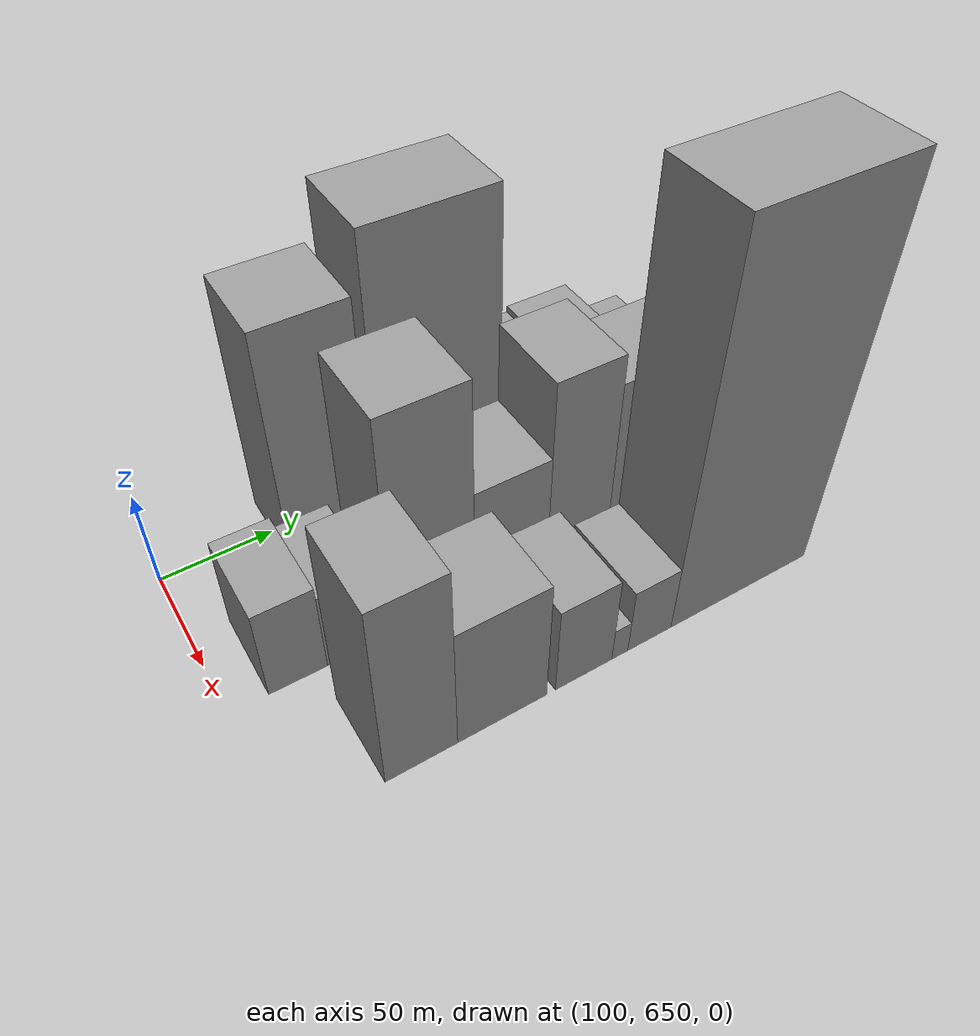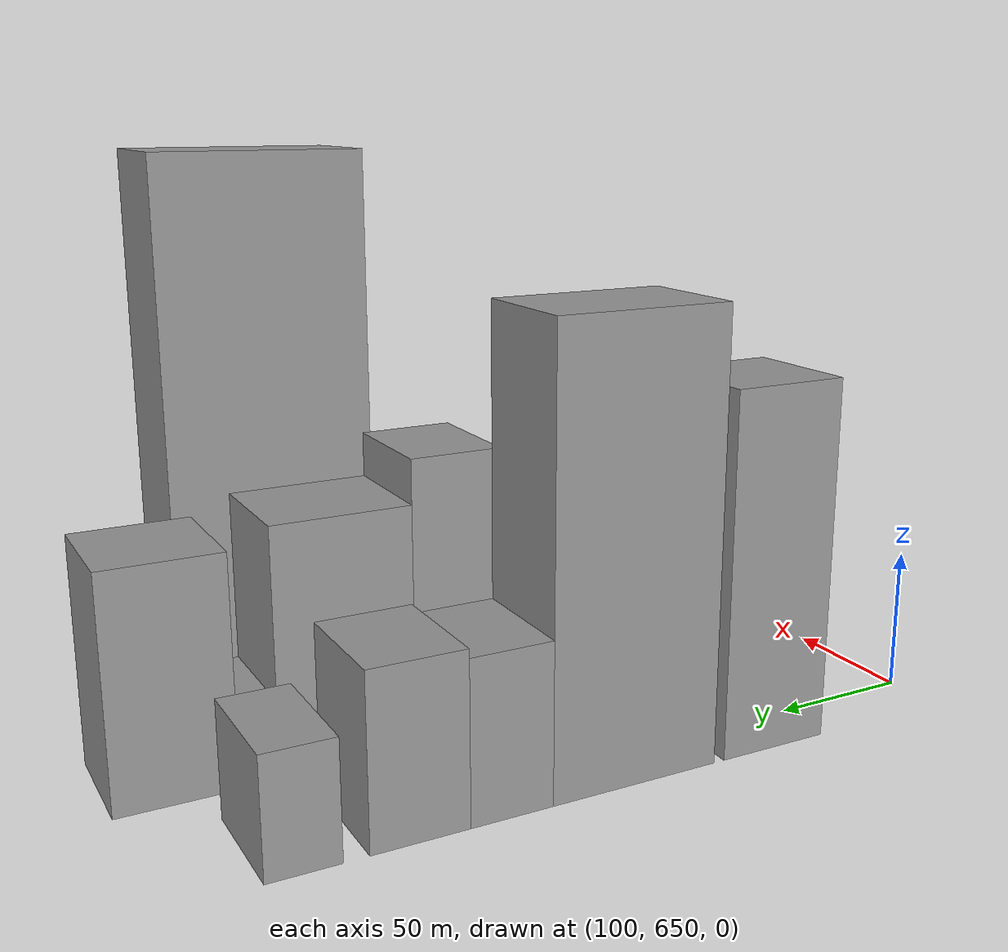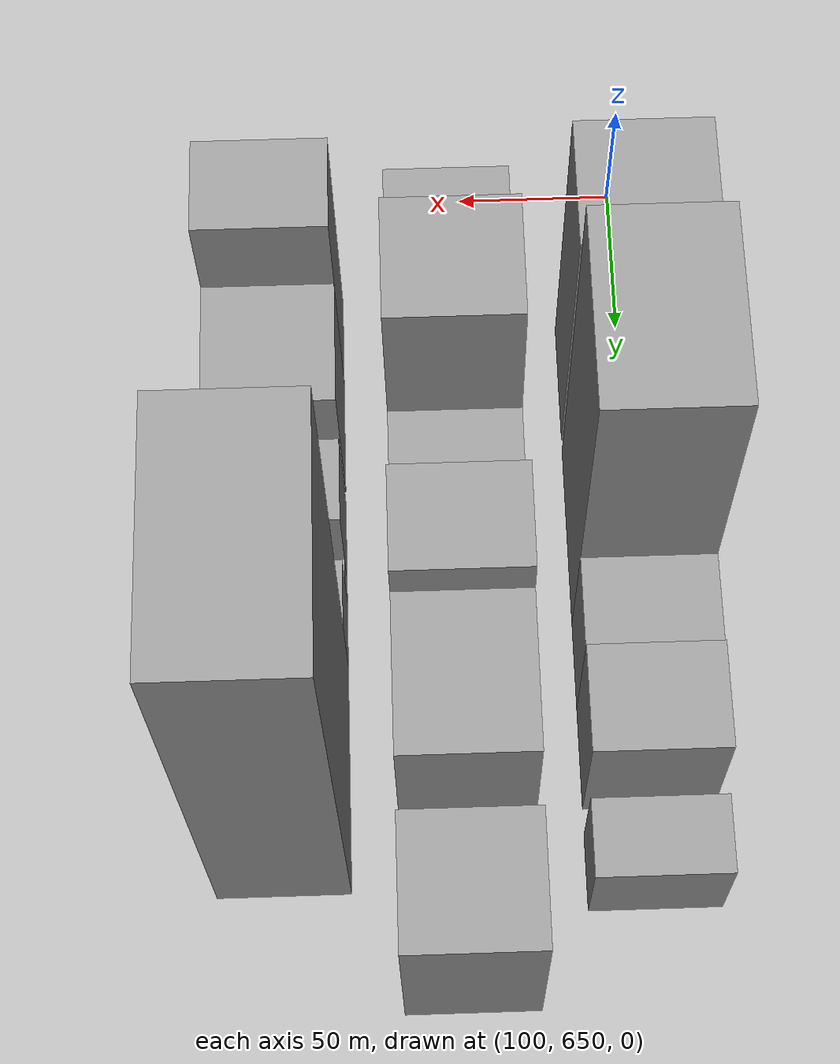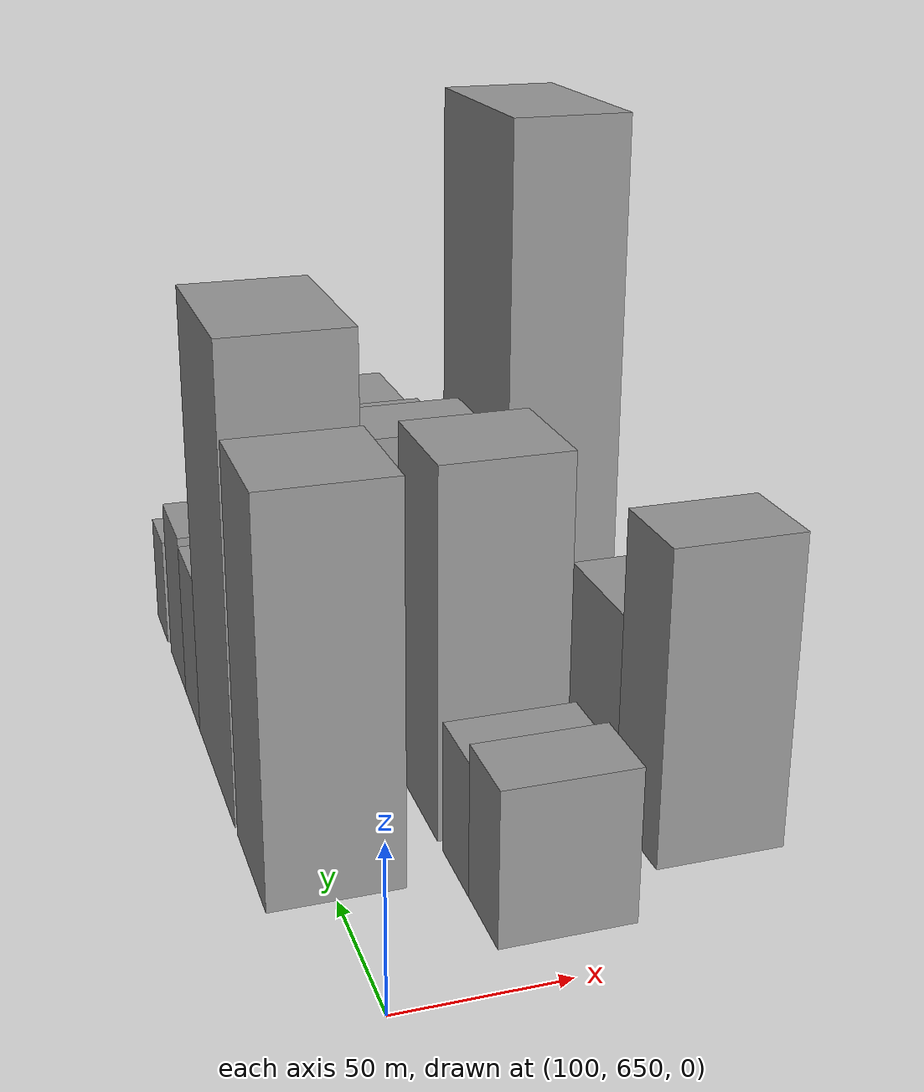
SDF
<sdf version="1.6">
 <world name="default">
  <model name="building_46">
   <static>1</static>
   <pose>100.0000 720.5906 0 0.000000 0.000000 0.000000</pose>
   <link name="link">
    <pose>0 0 61.50 0 0 0</pose>
    <collision name="collision"><geometry><box><size>40.0000 40.1771 123.0000</size></box></geometry></collision>
    <visual name="visual">
     <cast_shadows>0</cast_shadows>
     <geometry><box><size>40.0000 40.1771 123.0000</size></box></geometry>
     <material>
      <script>
       <uri>model://grey_wall/materials/scripts</uri>
       <uri>model://grey_wall/materials/textures</uri>
       <name>vrc/grey_wall</name>
      </script>
     </material>
    </visual>
   </link>
  </model>
  <model name="building_47">
   <static>1</static>
   <pose>100.0000 774.5838 0 0.000000 0.000000 0.000000</pose>
   <link name="link">
    <pose>0 0 75.00 0 0 0</pose>
    <collision name="collision"><geometry><box><size>40.0000 59.8094 150.0000</size></box></geometry></collision>
    <visual name="visual">
     <cast_shadows>0</cast_shadows>
     <geometry><box><size>40.0000 59.8094 150.0000</size></box></geometry>
     <material>
      <script>
       <uri>model://grey_wall/materials/scripts</uri>
       <uri>model://grey_wall/materials/textures</uri>
       <name>vrc/grey_wall</name>
      </script>
     </material>
    </visual>
   </link>
  </model>
  <model name="building_48">
   <static>1</static>
   <pose>100.0000 818.4534 0 0.000000 0.000000 0.000000</pose>
   <link name="link">
    <pose>0 0 27.00 0 0 0</pose>
    <collision name="collision"><geometry><box><size>40.0000 27.9298 54.0000</size></box></geometry></collision>
    <visual name="visual">
     <cast_shadows>0</cast_shadows>
     <geometry><box><size>40.0000 27.9298 54.0000</size></box></geometry>
     <material>
      <script>
       <uri>model://grey_wall/materials/scripts</uri>
       <uri>model://grey_wall/materials/textures</uri>
       <name>vrc/grey_wall</name>
      </script>
     </material>
    </visual>
   </link>
  </model>
  <model name="building_49">
   <static>1</static>
   <pose>100.0000 848.4009 0 0.000000 0.000000 0.000000</pose>
   <link name="link">
    <pose>0 0 28.50 0 0 0</pose>
    <collision name="collision"><geometry><box><size>40.0000 31.9652 57.0000</size></box></geometry></collision>
    <visual name="visual">
     <cast_shadows>0</cast_shadows>
     <geometry><box><size>40.0000 31.9652 57.0000</size></box></geometry>
     <material>
      <script>
       <uri>model://grey_wall/materials/scripts</uri>
       <uri>model://grey_wall/materials/textures</uri>
       <name>vrc/grey_wall</name>
      </script>
     </material>
    </visual>
   </link>
  </model>
  <model name="building_50">
   <static>1</static>
   <pose>100.0000 883.9743 0 0.000000 0.000000 0.000000</pose>
   <link name="link">
    <pose>0 0 19.50 0 0 0</pose>
    <collision name="collision"><geometry><box><size>40.0000 23.1816 39.0000</size></box></geometry></collision>
    <visual name="visual">
     <cast_shadows>0</cast_shadows>
     <geometry><box><size>40.0000 23.1816 39.0000</size></box></geometry>
     <material>
      <script>
       <uri>model://grey_wall/materials/scripts</uri>
       <uri>model://grey_wall/materials/textures</uri>
       <name>vrc/grey_wall</name>
      </script>
     </material>
    </visual>
   </link>
  </model>
  <model name="building_100">
   <static>1</static>
   <pose>155.0000 679.1481 0 0.000000 0.000000 0.000000</pose>
   <link name="link">
    <pose>0 0 24.00 0 0 0</pose>
    <collision name="collision"><geometry><box><size>40.0000 24.6369 48.0000</size></box></geometry></collision>
    <visual name="visual">
     <cast_shadows>0</cast_shadows>
     <geometry><box><size>40.0000 24.6369 48.0000</size></box></geometry>
     <material>
      <script>
       <uri>model://grey_wall/materials/scripts</uri>
       <uri>model://grey_wall/materials/textures</uri>
       <name>vrc/grey_wall</name>
      </script>
     </material>
    </visual>
   </link>
  </model>
  <model name="building_101">
   <static>1</static>
   <pose>155.0000 703.2707 0 0.000000 0.000000 0.000000</pose>
   <link name="link">
    <pose>0 0 21.00 0 0 0</pose>
    <collision name="collision"><geometry><box><size>40.0000 23.6083 42.0000</size></box></geometry></collision>
    <visual name="visual">
     <cast_shadows>0</cast_shadows>
     <geometry><box><size>40.0000 23.6083 42.0000</size></box></geometry>
     <material>
      <script>
       <uri>model://grey_wall/materials/scripts</uri>
       <uri>model://grey_wall/materials/textures</uri>
       <name>vrc/grey_wall</name>
      </script>
     </material>
    </visual>
   </link>
  </model>
  <model name="building_102">
   <static>1</static>
   <pose>155.0000 739.1633 0 0.000000 0.000000 0.000000</pose>
   <link name="link">
    <pose>0 0 58.50 0 0 0</pose>
    <collision name="collision"><geometry><box><size>40.0000 38.1768 117.0000</size></box></geometry></collision>
    <visual name="visual">
     <cast_shadows>0</cast_shadows>
     <geometry><box><size>40.0000 38.1768 117.0000</size></box></geometry>
     <material>
      <script>
       <uri>model://grey_wall/materials/scripts</uri>
       <uri>model://grey_wall/materials/textures</uri>
       <name>vrc/grey_wall</name>
      </script>
     </material>
    </visual>
   </link>
  </model>
  <model name="building_103">
   <static>1</static>
   <pose>155.0000 775.9968 0 0.000000 0.000000 0.000000</pose>
   <link name="link">
    <pose>0 0 30.00 0 0 0</pose>
    <collision name="collision"><geometry><box><size>40.0000 35.4901 60.0000</size></box></geometry></collision>
    <visual name="visual">
     <cast_shadows>0</cast_shadows>
     <geometry><box><size>40.0000 35.4901 60.0000</size></box></geometry>
     <material>
      <script>
       <uri>model://grey_wall/materials/scripts</uri>
       <uri>model://grey_wall/materials/textures</uri>
       <name>vrc/grey_wall</name>
      </script>
     </material>
    </visual>
   </link>
  </model>
  <model name="building_104">
   <static>1</static>
   <pose>155.0000 809.5258 0 0.000000 0.000000 0.000000</pose>
   <link name="link">
    <pose>0 0 49.50 0 0 0</pose>
    <collision name="collision"><geometry><box><size>40.0000 31.5680 99.0000</size></box></geometry></collision>
    <visual name="visual">
     <cast_shadows>0</cast_shadows>
     <geometry><box><size>40.0000 31.5680 99.0000</size></box></geometry>
     <material>
      <script>
       <uri>model://grey_wall/materials/scripts</uri>
       <uri>model://grey_wall/materials/textures</uri>
       <name>vrc/grey_wall</name>
      </script>
     </material>
    </visual>
   </link>
  </model>
  <model name="building_105">
   <static>1</static>
   <pose>155.0000 848.7989 0 0.000000 0.000000 0.000000</pose>
   <link name="link">
    <pose>0 0 42.00 0 0 0</pose>
    <collision name="collision"><geometry><box><size>40.0000 46.9780 84.0000</size></box></geometry></collision>
    <visual name="visual">
     <cast_shadows>0</cast_shadows>
     <geometry><box><size>40.0000 46.9780 84.0000</size></box></geometry>
     <material>
      <script>
       <uri>model://grey_wall/materials/scripts</uri>
       <uri>model://grey_wall/materials/textures</uri>
       <name>vrc/grey_wall</name>
      </script>
     </material>
    </visual>
   </link>
  </model>
  <model name="building_106">
   <static>1</static>
   <pose>155.0000 878.7879 0 0.000000 0.000000 0.000000</pose>
   <link name="link">
    <pose>0 0 13.50 0 0 0</pose>
    <collision name="collision"><geometry><box><size>40.0000 13.0000 27.0000</size></box></geometry></collision>
    <visual name="visual">
     <cast_shadows>0</cast_shadows>
     <geometry><box><size>40.0000 13.0000 27.0000</size></box></geometry>
     <material>
      <script>
       <uri>model://grey_wall/materials/scripts</uri>
       <uri>model://grey_wall/materials/textures</uri>
       <name>vrc/grey_wall</name>
      </script>
     </material>
    </visual>
   </link>
  </model>
  <model name="building_107">
   <static>1</static>
   <pose>155.0000 904.9095 0 0.000000 0.000000 0.000000</pose>
   <link name="link">
    <pose>0 0 39.00 0 0 0</pose>
    <collision name="collision"><geometry><box><size>40.0000 39.2432 78.0000</size></box></geometry></collision>
    <visual name="visual">
     <cast_shadows>0</cast_shadows>
     <geometry><box><size>40.0000 39.2432 78.0000</size></box></geometry>
     <material>
      <script>
       <uri>model://grey_wall/materials/scripts</uri>
       <uri>model://grey_wall/materials/textures</uri>
       <name>vrc/grey_wall</name>
      </script>
     </material>
    </visual>
   </link>
  </model>
  <model name="building_149">
   <static>1</static>
   <pose>210.0000 702.9788 0 0.000000 0.000000 0.000000</pose>
   <link name="link">
    <pose>0 0 49.50 0 0 0</pose>
    <collision name="collision"><geometry><box><size>40.0000 29.9034 99.0000</size></box></geometry></collision>
    <visual name="visual">
     <cast_shadows>0</cast_shadows>
     <geometry><box><size>40.0000 29.9034 99.0000</size></box></geometry>
     <material>
      <script>
       <uri>model://grey_wall/materials/scripts</uri>
       <uri>model://grey_wall/materials/textures</uri>
       <name>vrc/grey_wall</name>
      </script>
     </material>
    </visual>
   </link>
  </model>
  <model name="building_150">
   <static>1</static>
   <pose>210.0000 737.4481 0 0.000000 0.000000 0.000000</pose>
   <link name="link">
    <pose>0 0 33.00 0 0 0</pose>
    <collision name="collision"><geometry><box><size>40.0000 39.0352 66.0000</size></box></geometry></collision>
    <visual name="visual">
     <cast_shadows>0</cast_shadows>
     <geometry><box><size>40.0000 39.0352 66.0000</size></box></geometry>
     <material>
      <script>
       <uri>model://grey_wall/materials/scripts</uri>
       <uri>model://grey_wall/materials/textures</uri>
       <name>vrc/grey_wall</name>
      </script>
     </material>
    </visual>
   </link>
  </model>
  <model name="building_151">
   <static>1</static>
   <pose>210.0000 774.2382 0 0.000000 0.000000 0.000000</pose>
   <link name="link">
    <pose>0 0 24.00 0 0 0</pose>
    <collision name="collision"><geometry><box><size>40.0000 26.5449 48.0000</size></box></geometry></collision>
    <visual name="visual">
     <cast_shadows>0</cast_shadows>
     <geometry><box><size>40.0000 26.5449 48.0000</size></box></geometry>
     <material>
      <script>
       <uri>model://grey_wall/materials/scripts</uri>
       <uri>model://grey_wall/materials/textures</uri>
       <name>vrc/grey_wall</name>
      </script>
     </material>
    </visual>
   </link>
  </model>
  <model name="building_152">
   <static>1</static>
   <pose>210.0000 791.3704 0 0.000000 0.000000 0.000000</pose>
   <link name="link">
    <pose>0 0 9.00 0 0 0</pose>
    <collision name="collision"><geometry><box><size>40.0000 7.7194 18.0000</size></box></geometry></collision>
    <visual name="visual">
     <cast_shadows>0</cast_shadows>
     <geometry><box><size>40.0000 7.7194 18.0000</size></box></geometry>
     <material>
      <script>
       <uri>model://grey_wall/materials/scripts</uri>
       <uri>model://grey_wall/materials/textures</uri>
       <name>vrc/grey_wall</name>
      </script>
     </material>
    </visual>
   </link>
  </model>
  <model name="building_153">
   <static>1</static>
   <pose>210.0000 805.9480 0 0.000000 0.000000 0.000000</pose>
   <link name="link">
    <pose>0 0 18.00 0 0 0</pose>
    <collision name="collision"><geometry><box><size>40.0000 21.4358 36.0000</size></box></geometry></collision>
    <visual name="visual">
     <cast_shadows>0</cast_shadows>
     <geometry><box><size>40.0000 21.4358 36.0000</size></box></geometry>
     <material>
      <script>
       <uri>model://grey_wall/materials/scripts</uri>
       <uri>model://grey_wall/materials/textures</uri>
       <name>vrc/grey_wall</name>
      </script>
     </material>
    </visual>
   </link>
  </model>
  <model name="building_154">
   <static>1</static>
   <pose>210.0000 852.4166 0 0.000000 0.000000 0.000000</pose>
   <link name="link">
    <pose>0 0 96.00 0 0 0</pose>
    <collision name="collision"><geometry><box><size>40.0000 71.5013 192.0000</size></box></geometry></collision>
    <visual name="visual">
     <cast_shadows>0</cast_shadows>
     <geometry><box><size>40.0000 71.5013 192.0000</size></box></geometry>
     <material>
      <script>
       <uri>model://grey_wall/materials/scripts</uri>
       <uri>model://grey_wall/materials/textures</uri>
       <name>vrc/grey_wall</name>
      </script>
     </material>
    </visual>
   </link>
  </model>
 </world>
</sdf>
